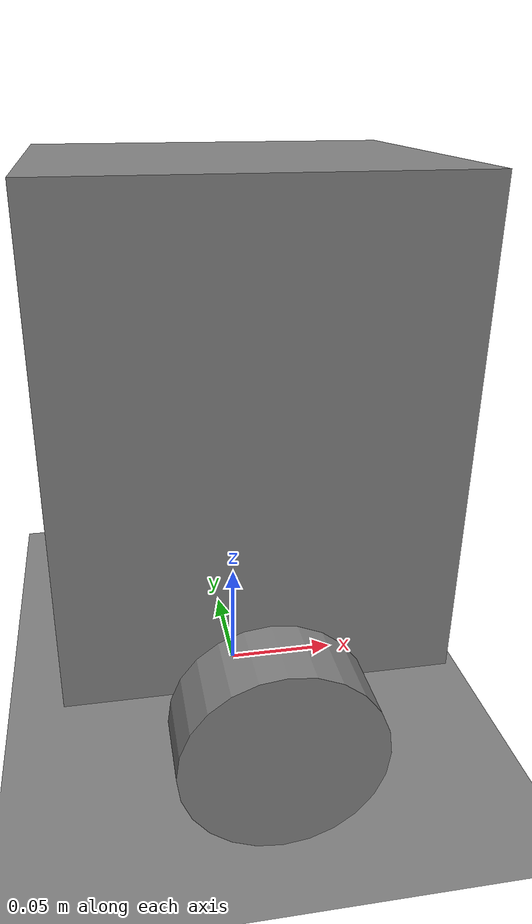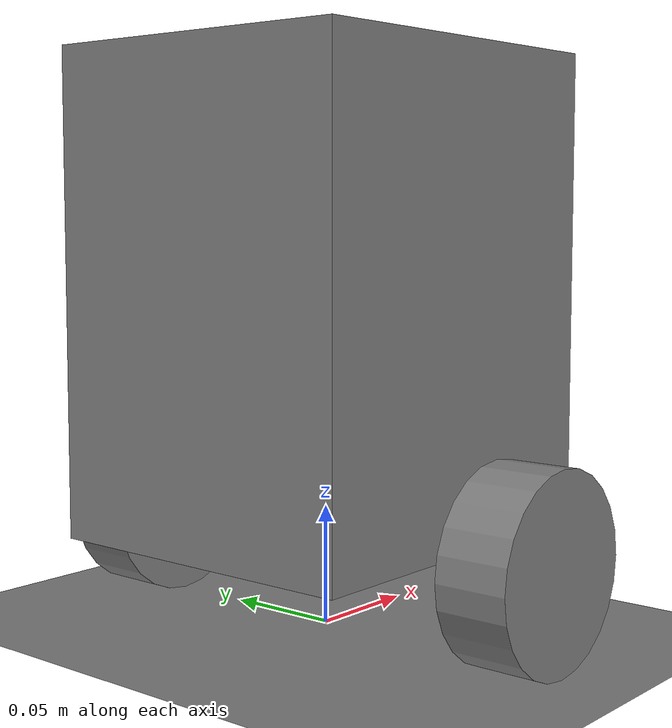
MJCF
<mujoco model="balancing_starter">
  <compiler angle="degree"/>]
  <option timestep="0.002" gravity="0 0 -9.81"/>

  <worldbody>
    <geom name="floor" type="plane" size="2 2 0.1"
          friction="1 0.005 0.0001"/>

    <body name="chassis" pos="0 0 0.04">
      <freejoint name="root"/>
      <geom name="chassis_shape" type="box" pos="0 0 0.10"
            size="0.08 0.07 0.10" mass="0.8"/>
      <site name="imu" pos="0 0 0.12" size="0.005"/>

      <body name="left_wheel" pos="0 0.10 0">
        <joint name="left_axle" type="hinge" axis="0 1 0"
               damping="0.001"/>
        <geom name="left_tire" type="cylinder" size="0.04 0.015"
              euler="90 0 0" mass="0.1"
              friction="1 0.005 0.0001"/>
      </body>

      <body name="right_wheel" pos="0 -0.10 0">
        <joint name="right_axle" type="hinge" axis="0 1 0"
               damping="0.001"/>
        <geom name="right_tire" type="cylinder" size="0.04 0.015"
              euler="90 0 0" mass="0.1"
              friction="1 0.005 0.0001"/>
      </body>
    </body>
  </worldbody>

  <actuator>
    <motor name="left_drive" joint="left_axle" gear="1"
           ctrllimited="true" ctrlrange="-0.2 0.2"/>
    <motor name="right_drive" joint="right_axle" gear="1"
           ctrllimited="true" ctrlrange="-0.2 0.2"/>
  </actuator>

  <sensor>
    <gyro name="angular_rate" site="imu"/>
    <accelerometer name="linear_accel" site="imu"/>
    <jointvel name="left_speed" joint="left_axle"/>
    <jointvel name="right_speed" joint="right_axle"/>
  </sensor>
</mujoco>
